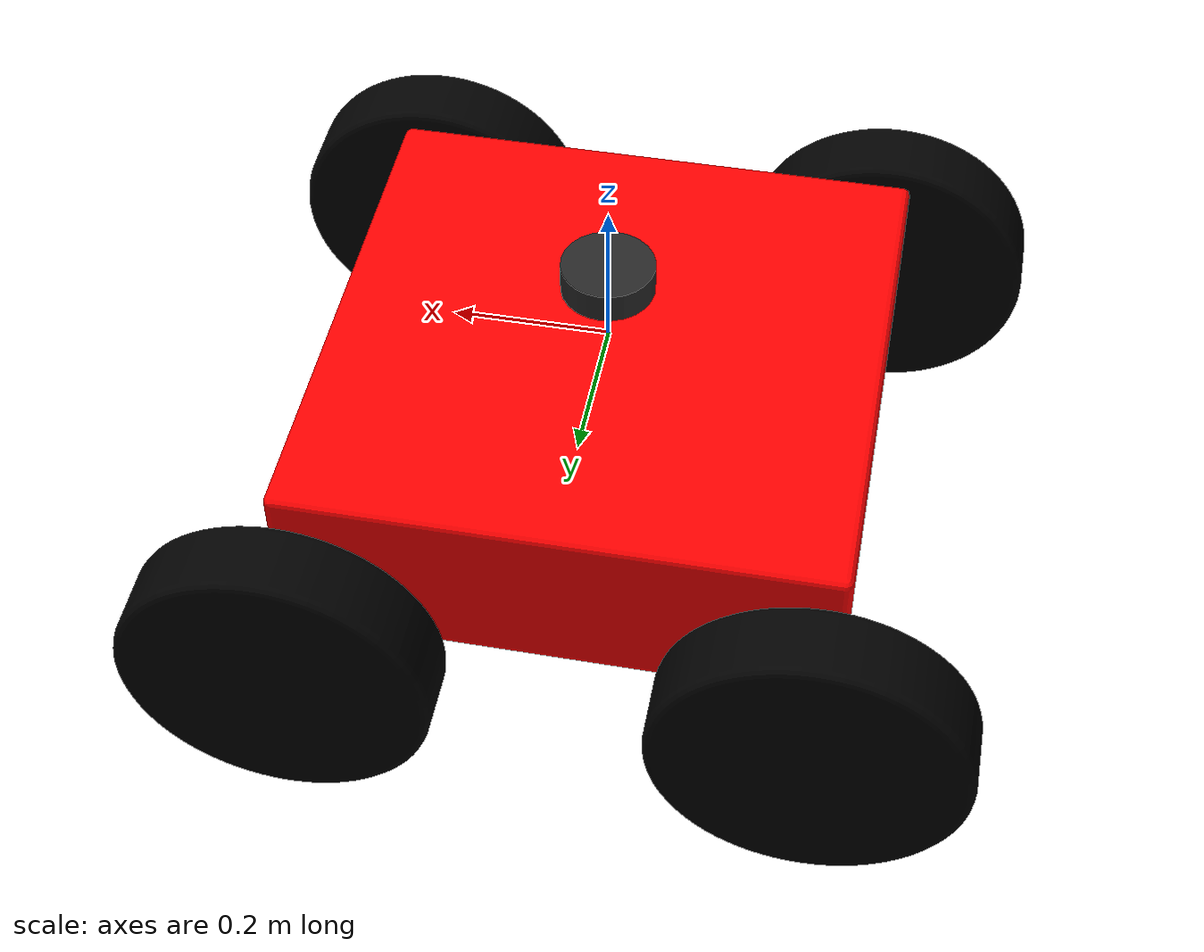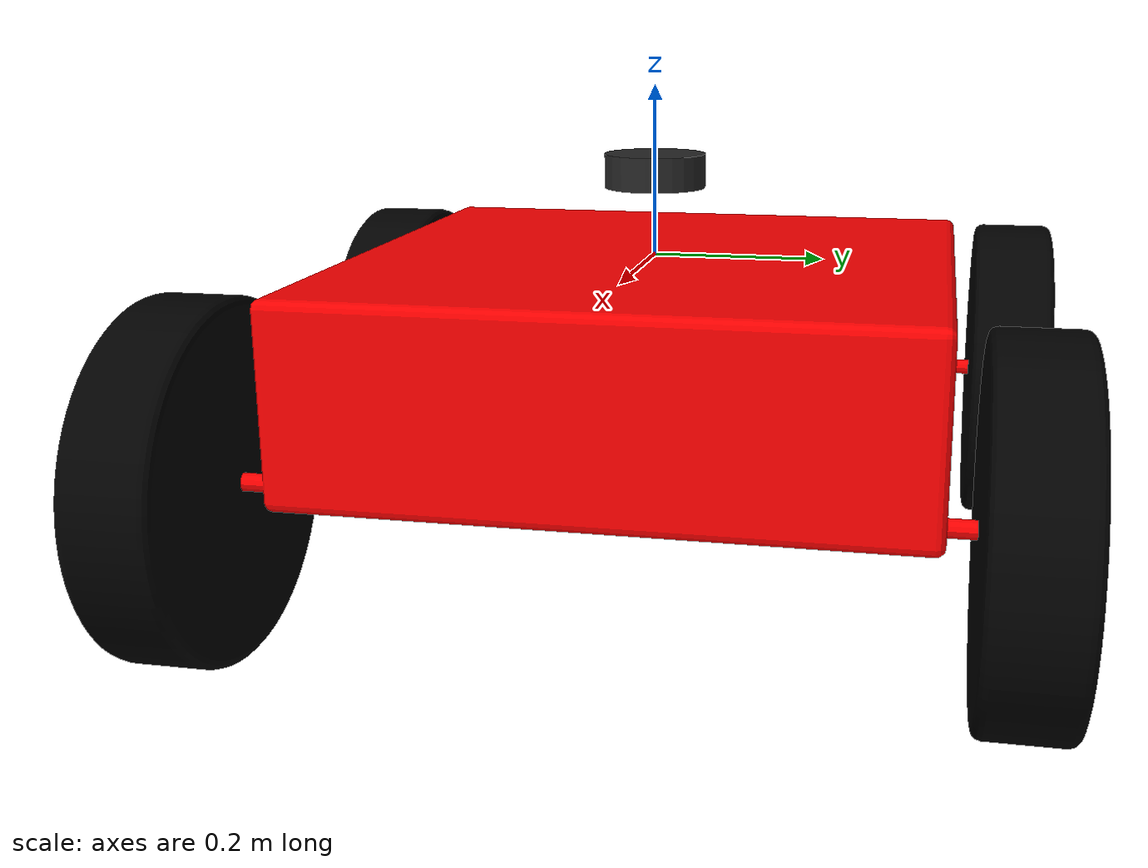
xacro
<?xml version="1.0"?>

<robot name="mobile_bot"
       xmlns:xacro="http://www.ros.org/wiki/xacro">

    <!-- BASE LINK MACRO -->

    <xacro:macro name="base_link" params="name x y z">

        <link name="${name}">

            <inertial>
                <origin xyz="${x} ${y} ${z}" rpy="0 0 0"/>
                <mass value="116.263363408155"/>

                <inertia
                    ixx="5.41231133370448"
                    ixy="1.71735930055809E-16"
                    ixz="5.50981564165212E-17"
                    iyy="5.41041337515425"
                    iyz="-3.04127902907885E-17"
                    izz="9.79921269240122"/>
            </inertial>

            <visual>
                <origin xyz="0 0 0" rpy="0 0 0"/>

                <geometry>
                    <mesh filename="package://mobile_bot_description/meshes/base_link.STL"/>
                </geometry>

                <material name="red">
                    <color rgba="1.0 0.0 0.0 1.0"/>
                </material>
            </visual>

            <collision>
                <origin xyz="0 0 0" rpy="0 0 0"/>

                <geometry>
                    <mesh filename="package://mobile_bot_description/meshes/base_link.STL"/>
                </geometry>
            </collision>

        </link>

    </xacro:macro>

    <!-- WHEEL MACRO -->

    <xacro:macro name="wheel"
        params="
            name
            joint_name
            com_x
            com_y
            com_z
            joint_x
            joint_y
            joint_z
            ixx
            ixy
            ixz
            iyy
            iyz
            izz">

        <link name="${name}">

            <inertial>
                <origin
                    xyz="${com_x} ${com_y} ${com_z}"
                    rpy="0 0 0"/>

                <mass value="12.5057640888134"/>

                <inertia
                    ixx="${ixx}"
                    ixy="${ixy}"
                    ixz="${ixz}"
                    iyy="${iyy}"
                    iyz="${iyz}"
                    izz="${izz}"/>
            </inertial>

            <visual>
                <origin xyz="0 0 0" rpy="0 0 0"/>

                <geometry>
                    <mesh filename="package://mobile_bot_description/meshes/${name}.STL"/>
                </geometry>

                <material name="black">
                    <color rgba="0.0 0.0 0.0 1.0"/>
                </material>
            </visual>

            <collision>
                <origin xyz="0 0 0" rpy="0 0 0"/>

                <geometry>
                    <mesh filename="package://mobile_bot_description/meshes/${name}.STL"/>
                </geometry>
            </collision>

        </link>

        <!-- Wheel joint -->

        <joint name="${joint_name}" type="continuous">

            <parent link="base_link"/>
            <child link="${name}"/>

            <origin
                xyz="${joint_x} ${joint_y} ${joint_z}"
                rpy="0 0 0"/>

            <axis xyz="0 1 0"/>

        </joint>

    </xacro:macro>

    <!-- LIDAR MACRO -->

    <xacro:macro name="lidar_link" params="name x y z">

        <link name="${name}">

            <inertial>

                <origin xyz="0 0 0" rpy="0 0 0"/>

                <mass value="0.5"/>

                <inertia
                    ixx="0.001"
                    ixy="0.0"
                    ixz="0.0"
                    iyy="0.001"
                    iyz="0.0"
                    izz="0.001"/>

            </inertial>

            <!-- LiDAR visual -->

            <visual>

                <origin xyz="0 0 0" rpy="0 0 0"/>

                <geometry>
                    <cylinder radius="0.06" length="0.04"/>
                </geometry>

                <material name="lidar_material">
                    <color rgba="0.15 0.15 0.15 1.0"/>
                </material>

            </visual>

            <!-- LiDAR collision -->

            <collision>

                <origin xyz="0 0 0" rpy="0 0 0"/>

                <geometry>
                    <cylinder radius="0.06" length="0.04"/>
                </geometry>

            </collision>

        </link>

        <!-- FIXED JOINT: BASE -> LIDAR -->

        <joint name="${name}_joint" type="fixed">

            <parent link="base_link"/>
            <child link="${name}"/>

            <origin
                xyz="${x} ${y} ${z}"
                rpy="0 0 0"/>

        </joint>

    </xacro:macro>

    <!-- CREATE BASE -->

    <xacro:base_link
        name="base_link"
        x="2.22044604925031E-16"
        y="0"
        z="-0.11504910016487"/>

    <!-- CREATE WHEELS -->

    <xacro:wheel
        name="wheel_BR"
        com_x="-4.44089209850063E-16"
        com_y="0.0499770261051298"
        com_z="2.22044604925031E-16"
        joint_name="joint_BR"
        joint_x="-0.33022"
        joint_y="-0.4853"
        joint_z="-0.2046"
        ixx="0.134958791480988"
        ixy="-2.90113365733414E-17"
        ixz="2.33346550650993E-18"
        iyy="0.249240517870682"
        iyz="-5.18475927398714E-20"
        izz="0.134958791480988"/>

    <xacro:wheel
        name="wheel_BL"
        com_x="0"
        com_y="-0.0499770261051298"
        com_z="0"
        joint_name="joint_BL"
        joint_x="-0.33022"
        joint_y="0.4853"
        joint_z="-0.2046"
        ixx="0.134958791480988"
        ixy="-2.90113365733414E-17"
        ixz="2.33346550650993E-18"
        iyy="0.249240517870682"
        iyz="-5.18475927398714E-20"
        izz="0.134958791480988"/>

    <xacro:wheel
        name="wheel_FR"
        com_x="0"
        com_y="0.0499770261051298"
        com_z="0"
        joint_name="joint_FR"
        joint_x="0.33022"
        joint_y="-0.4853"
        joint_z="-0.2046"
        ixx="0.134958791480988"
        ixy="-2.90113365733414E-17"
        ixz="2.33346550650993E-18"
        iyy="0.249240517870682"
        iyz="-5.18475927398714E-20"
        izz="0.134958791480988"/>

    <xacro:wheel
        name="wheel_FL"
        com_x="0"
        com_y="-0.0499770261051298"
        com_z="0"
        joint_name="joint_FL"
        joint_x="0.33022"
        joint_y="0.4853"
        joint_z="-0.2046"
        ixx="0.134958791480988"
        ixy="-2.90113365733414E-17"
        ixz="2.33346550650993E-18"
        iyy="0.249240517870682"
        iyz="-5.18475927398714E-20"
        izz="0.134958791480988"/>

    <!-- CREATE LIDAR -->

    <xacro:lidar_link
        name="lidar_link"
        x="0"
        y="0"
        z="0.10"/>

    <!-- GAZEBO -->

    <xacro:include filename="mobile_robot.gazebo.xacro"/>

    <!-- ROS 2 CONTROL -->

    <xacro:include filename="mobile_base.ros2_control.xacro"/>

</robot>
